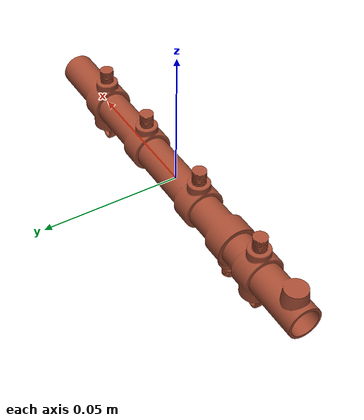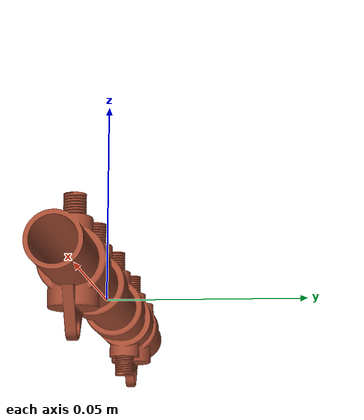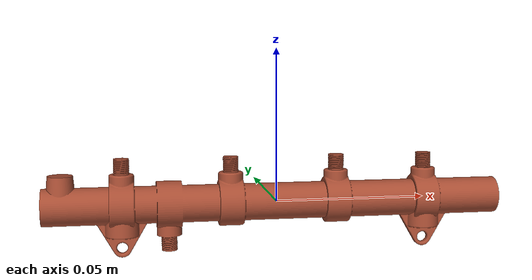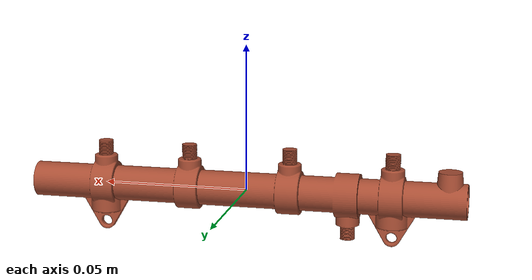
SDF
<?xml version="1.0" ?>
<sdf version="1.5">
  <model name="common-line">
    <static>false</static>
    <link name="link">
      <collision name="collision">
        <geometry>
          <box>
            <size>1.70 0.50 0.57</size>
          </box>
        </geometry>

      </collision>
      <visual name="visual">
        <cast_shadows>true</cast_shadows>
        <geometry>
          <mesh>
            <scale>0.001 0.001 0.001</scale>
            <uri>model://common-line/meshes/common-line.dae</uri>
          </mesh>s
        </geometry>
        <material>
          <script>
           <uri>file://media/materials/scripts/gazebo.material</uri>
           <name>Gazebo/Bricks</name>
          </script>
        </material>
      </visual>
    </link>
  </model>
</sdf>
